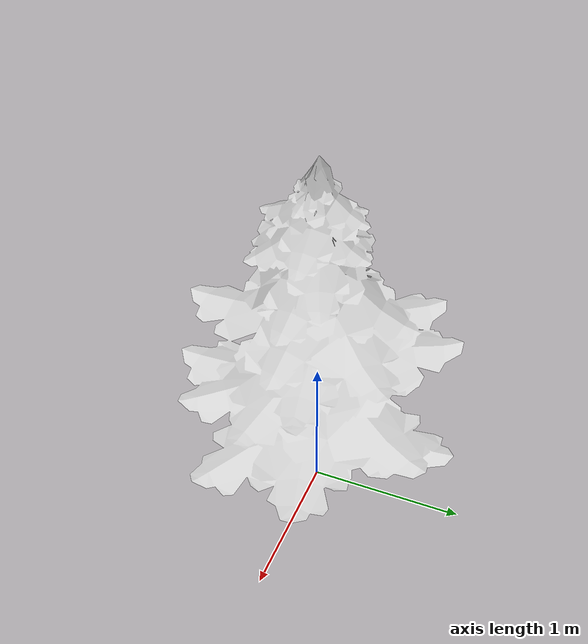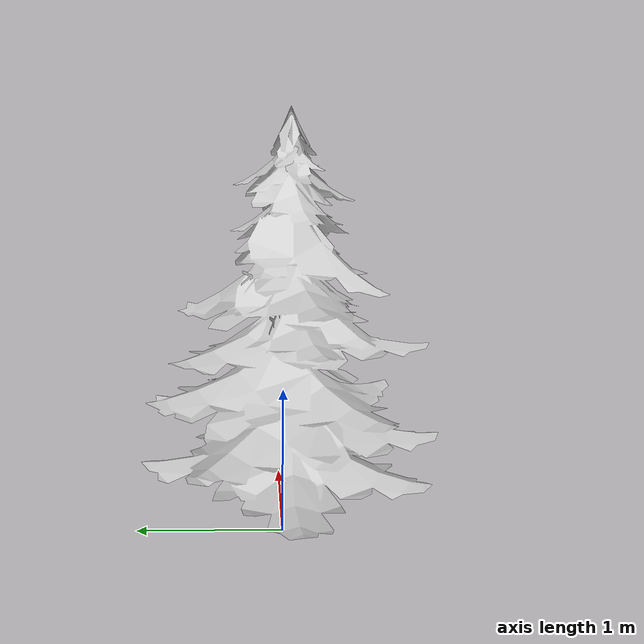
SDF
<?xml version="1.0" ?>
<sdf version='1.5'>
  <model name='pine_tree_1'>
    <static>true</static>
      <link name='pine_tree_1'>
        <pose frame=''>0 0 0 0 0 0</pose>
         <collision name='pine_tree_1'>
          <geometry>
            <mesh>
              <uri>model://pine_tree_1/pine_tree_1.dae</uri>
            </mesh>
          </geometry>
        </collision>
        <visual name='pine_tree_1'>
        <cast_shadows>false</cast_shadows>
          <geometry>
            <mesh>
              <scale>0.9 0.9 0.9</scale>
              <uri>model://pine_tree_1/pine_tree_1.dae</uri>
            </mesh>
          </geometry>
          <material>
            <script>
              <name>pine_tree_1</name>
              <uri>model://pine_tree_1/pine_tree_1.dae</uri>
            </script>
          </material>
        </visual>
      </link>
  </model>
</sdf>
